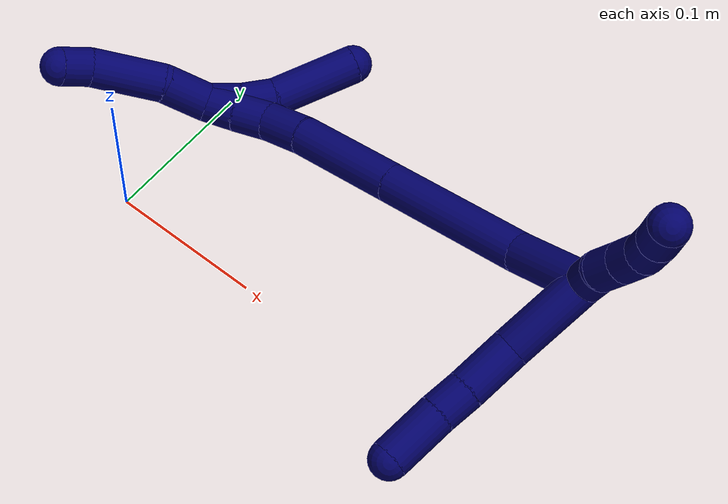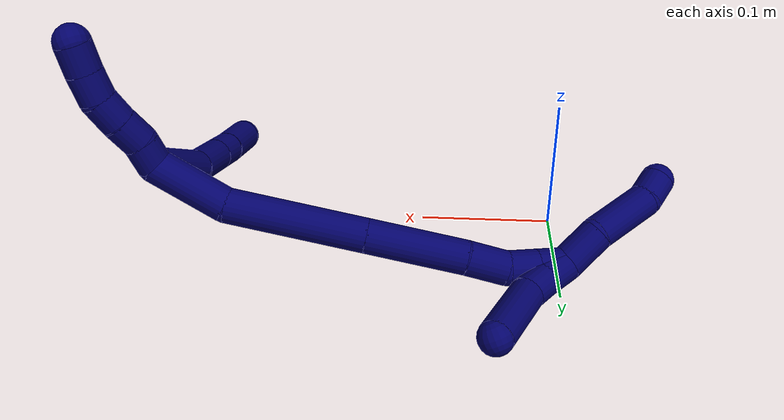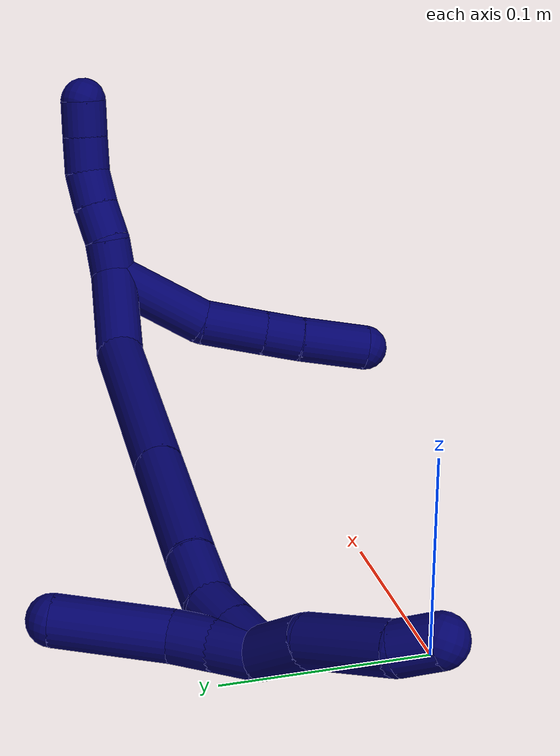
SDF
<sdf version="1.7">
 <world name="default">
  <model name="7">
   <static>0</static>
   <link name="7">
    <collision name="collision-cylinder-e_1_2_8">
     <pose>-0.003991 -0.027338 -0.002669 1.66811 -0.144305 -0.15902</pose>
     <geometry><cylinder><radius>0.0125</radius><length>0.055512</length></cylinder></geometry>
     <surface>
      <friction><ode><mu>1.16</mu><mu2>1.16</mu2><slip1>0</slip1><slip2>0</slip2></ode></friction>
      <contact><ode><kp>1e+06</kp><kd>1</kd><max_vel>0</max_vel><min_depth>0.001</min_depth></ode></contact>
     </surface>
    </collision>
    <visual name="visual-cylinder-e_1_2_8">
     <pose>-0.003991 -0.027338 -0.002669 1.66811 -0.144305 -0.15902</pose>
     <geometry><cylinder><radius>0.0125</radius><length>0.055512</length></cylinder></geometry>
     <material><ambient>0.003922 0 0.403922 1</ambient></material>
    </visual>
    <collision name="collision-cylinder-e_2_8_9">
     <pose>-0.011003 -0.071785 -0.001791 1.36641 -0.171138 -0.139416</pose>
     <geometry><cylinder><radius>0.0125</radius><length>0.035464</length></cylinder></geometry>
     <surface>
      <friction><ode><mu>1.16</mu><mu2>1.16</mu2><slip1>0</slip1><slip2>0</slip2></ode></friction>
      <contact><ode><kp>1e+06</kp><kd>1</kd><max_vel>0</max_vel><min_depth>0.001</min_depth></ode></contact>
     </surface>
    </collision>
    <visual name="visual-cylinder-e_2_8_9">
     <pose>-0.011003 -0.071785 -0.001791 1.36641 -0.171138 -0.139416</pose>
     <geometry><cylinder><radius>0.0125</radius><length>0.035464</length></cylinder></geometry>
     <material><ambient>0.003922 0 0.403922 1</ambient></material>
    </visual>
    <collision name="collision-cylinder-e_3_9_10">
     <pose>-0.016291 -0.099093 0.003897 1.36383 -0.2143 -0.174203</pose>
     <geometry><cylinder><radius>0.0125</radius><length>0.02133</length></cylinder></geometry>
     <surface>
      <friction><ode><mu>1.16</mu><mu2>1.16</mu2><slip1>0</slip1><slip2>0</slip2></ode></friction>
      <contact><ode><kp>1e+06</kp><kd>1</kd><max_vel>0</max_vel><min_depth>0.001</min_depth></ode></contact>
     </surface>
    </collision>
    <visual name="visual-cylinder-e_3_9_10">
     <pose>-0.016291 -0.099093 0.003897 1.36383 -0.2143 -0.174203</pose>
     <geometry><cylinder><radius>0.0125</radius><length>0.02133</length></cylinder></geometry>
     <material><ambient>0.003922 0 0.403922 1</ambient></material>
    </visual>
    <collision name="collision-cylinder-e_4_10_6">
     <pose>-0.021679 -0.127293 0.010664 1.3193 -0.166328 -0.129114</pose>
     <geometry><cylinder><radius>0.0125</radius><length>0.037694</length></cylinder></geometry>
     <surface>
      <friction><ode><mu>1.16</mu><mu2>1.16</mu2><slip1>0</slip1><slip2>0</slip2></ode></friction>
      <contact><ode><kp>1e+06</kp><kd>1</kd><max_vel>0</max_vel><min_depth>0.001</min_depth></ode></contact>
     </surface>
    </collision>
    <visual name="visual-cylinder-e_4_10_6">
     <pose>-0.021679 -0.127293 0.010664 1.3193 -0.166328 -0.129114</pose>
     <geometry><cylinder><radius>0.0125</radius><length>0.037694</length></cylinder></geometry>
     <material><ambient>0.003922 0 0.403922 1</ambient></material>
    </visual>
    <collision name="collision-cylinder-e_1_2_11">
     <pose>-0.000227 0.005356 0.008442 -0.565347 -0.022703 0.006594</pose>
     <geometry><cylinder><radius>0.0125</radius><length>0.02</length></cylinder></geometry>
     <surface>
      <friction><ode><mu>1.16</mu><mu2>1.16</mu2><slip1>0</slip1><slip2>0</slip2></ode></friction>
      <contact><ode><kp>1e+06</kp><kd>1</kd><max_vel>0</max_vel><min_depth>0.001</min_depth></ode></contact>
     </surface>
    </collision>
    <visual name="visual-cylinder-e_1_2_11">
     <pose>-0.000227 0.005356 0.008442 -0.565347 -0.022703 0.006594</pose>
     <geometry><cylinder><radius>0.0125</radius><length>0.02</length></cylinder></geometry>
     <material><ambient>0.003922 0 0.403922 1</ambient></material>
    </visual>
    <collision name="collision-cylinder-e_2_11_12">
     <pose>0.001701 0.016611 0.024665 -0.64867 0.217195 -0.073278</pose>
     <geometry><cylinder><radius>0.0125</radius><length>0.02</length></cylinder></geometry>
     <surface>
      <friction><ode><mu>1.16</mu><mu2>1.16</mu2><slip1>0</slip1><slip2>0</slip2></ode></friction>
      <contact><ode><kp>1e+06</kp><kd>1</kd><max_vel>0</max_vel><min_depth>0.001</min_depth></ode></contact>
     </surface>
    </collision>
    <visual name="visual-cylinder-e_2_11_12">
     <pose>0.001701 0.016611 0.024665 -0.64867 0.217195 -0.073278</pose>
     <geometry><cylinder><radius>0.0125</radius><length>0.02</length></cylinder></geometry>
     <material><ambient>0.003922 0 0.403922 1</ambient></material>
    </visual>
    <collision name="collision-cylinder-e_3_12_13">
     <pose>0.005396 0.027933 0.040706 -0.580997 0.154658 -0.04632</pose>
     <geometry><cylinder><radius>0.0125</radius><length>0.02</length></cylinder></geometry>
     <surface>
      <friction><ode><mu>1.16</mu><mu2>1.16</mu2><slip1>0</slip1><slip2>0</slip2></ode></friction>
      <contact><ode><kp>1e+06</kp><kd>1</kd><max_vel>0</max_vel><min_depth>0.001</min_depth></ode></contact>
     </surface>
    </collision>
    <visual name="visual-cylinder-e_3_12_13">
     <pose>0.005396 0.027933 0.040706 -0.580997 0.154658 -0.04632</pose>
     <geometry><cylinder><radius>0.0125</radius><length>0.02</length></cylinder></geometry>
     <material><ambient>0.003922 0 0.403922 1</ambient></material>
    </visual>
    <collision name="collision-cylinder-e_4_13_14">
     <pose>0.005926 0.037901 0.057816 -0.474432 -0.101282 0.024507</pose>
     <geometry><cylinder><radius>0.0125</radius><length>0.02</length></cylinder></geometry>
     <surface>
      <friction><ode><mu>1.16</mu><mu2>1.16</mu2><slip1>0</slip1><slip2>0</slip2></ode></friction>
      <contact><ode><kp>1e+06</kp><kd>1</kd><max_vel>0</max_vel><min_depth>0.001</min_depth></ode></contact>
     </surface>
    </collision>
    <visual name="visual-cylinder-e_4_13_14">
     <pose>0.005926 0.037901 0.057816 -0.474432 -0.101282 0.024507</pose>
     <geometry><cylinder><radius>0.0125</radius><length>0.02</length></cylinder></geometry>
     <material><ambient>0.003922 0 0.403922 1</ambient></material>
    </visual>
    <collision name="collision-cylinder-e_5_14_5">
     <pose>0.003127 0.04701 0.075382 -0.482398 -0.179699 0.044316</pose>
     <geometry><cylinder><radius>0.0125</radius><length>0.02</length></cylinder></geometry>
     <surface>
      <friction><ode><mu>1.16</mu><mu2>1.16</mu2><slip1>0</slip1><slip2>0</slip2></ode></friction>
      <contact><ode><kp>1e+06</kp><kd>1</kd><max_vel>0</max_vel><min_depth>0.001</min_depth></ode></contact>
     </surface>
    </collision>
    <visual name="visual-cylinder-e_5_14_5">
     <pose>0.003127 0.04701 0.075382 -0.482398 -0.179699 0.044316</pose>
     <geometry><cylinder><radius>0.0125</radius><length>0.02</length></cylinder></geometry>
     <material><ambient>0.003922 0 0.403922 1</ambient></material>
    </visual>
    <collision name="collision-cylinder-e_1_2_15">
     <pose>-0.016646 -0.004913 -0.021546 2.91742 -0.645562 -2.49237</pose>
     <geometry><cylinder><radius>0.0125</radius><length>0.055333</length></cylinder></geometry>
     <surface>
      <friction><ode><mu>1.16</mu><mu2>1.16</mu2><slip1>0</slip1><slip2>0</slip2></ode></friction>
      <contact><ode><kp>1e+06</kp><kd>1</kd><max_vel>0</max_vel><min_depth>0.001</min_depth></ode></contact>
     </surface>
    </collision>
    <visual name="visual-cylinder-e_1_2_15">
     <pose>-0.016646 -0.004913 -0.021546 2.91742 -0.645562 -2.49237</pose>
     <geometry><cylinder><radius>0.0125</radius><length>0.055333</length></cylinder></geometry>
     <material><ambient>0.003922 0 0.403922 1</ambient></material>
    </visual>
    <collision name="collision-cylinder-e_2_15_16">
     <pose>-0.073533 -0.018067 -0.070623 2.85073 -0.950655 -2.58711</pose>
     <geometry><cylinder><radius>0.0125</radius><length>0.0989</length></cylinder></geometry>
     <surface>
      <friction><ode><mu>1.16</mu><mu2>1.16</mu2><slip1>0</slip1><slip2>0</slip2></ode></friction>
      <contact><ode><kp>1e+06</kp><kd>1</kd><max_vel>0</max_vel><min_depth>0.001</min_depth></ode></contact>
     </surface>
    </collision>
    <visual name="visual-cylinder-e_2_15_16">
     <pose>-0.073533 -0.018067 -0.070623 2.85073 -0.950655 -2.58711</pose>
     <geometry><cylinder><radius>0.0125</radius><length>0.0989</length></cylinder></geometry>
     <material><ambient>0.003922 0 0.403922 1</ambient></material>
    </visual>
    <collision name="collision-cylinder-e_3_16_17">
     <pose>-0.142985 -0.03234 -0.11819 2.84916 -0.949177 -2.58325</pose>
     <geometry><cylinder><radius>0.0125</radius><length>0.071862</length></cylinder></geometry>
     <surface>
      <friction><ode><mu>1.16</mu><mu2>1.16</mu2><slip1>0</slip1><slip2>0</slip2></ode></friction>
      <contact><ode><kp>1e+06</kp><kd>1</kd><max_vel>0</max_vel><min_depth>0.001</min_depth></ode></contact>
     </surface>
    </collision>
    <visual name="visual-cylinder-e_3_16_17">
     <pose>-0.142985 -0.03234 -0.11819 2.84916 -0.949177 -2.58325</pose>
     <geometry><cylinder><radius>0.0125</radius><length>0.071862</length></cylinder></geometry>
     <material><ambient>0.003922 0 0.403922 1</ambient></material>
    </visual>
    <collision name="collision-cylinder-e_4_17_18">
     <pose>-0.183572 -0.042074 -0.14693 2.73954 -0.877246 -2.32198</pose>
     <geometry><cylinder><radius>0.0125</radius><length>0.029592</length></cylinder></geometry>
     <surface>
      <friction><ode><mu>1.16</mu><mu2>1.16</mu2><slip1>0</slip1><slip2>0</slip2></ode></friction>
      <contact><ode><kp>1e+06</kp><kd>1</kd><max_vel>0</max_vel><min_depth>0.001</min_depth></ode></contact>
     </surface>
    </collision>
    <visual name="visual-cylinder-e_4_17_18">
     <pose>-0.183572 -0.042074 -0.14693 2.73954 -0.877246 -2.32198</pose>
     <geometry><cylinder><radius>0.0125</radius><length>0.029592</length></cylinder></geometry>
     <material><ambient>0.003922 0 0.403922 1</ambient></material>
    </visual>
    <collision name="collision-cylinder-e_5_18_19">
     <pose>-0.204681 -0.050004 -0.159158 2.26542 -1.05596 -1.78818</pose>
     <geometry><cylinder><radius>0.0125</radius><length>0.022361</length></cylinder></geometry>
     <surface>
      <friction><ode><mu>1.16</mu><mu2>1.16</mu2><slip1>0</slip1><slip2>0</slip2></ode></friction>
      <contact><ode><kp>1e+06</kp><kd>1</kd><max_vel>0</max_vel><min_depth>0.001</min_depth></ode></contact>
     </surface>
    </collision>
    <visual name="visual-cylinder-e_5_18_19">
     <pose>-0.204681 -0.050004 -0.159158 2.26542 -1.05596 -1.78818</pose>
     <geometry><cylinder><radius>0.0125</radius><length>0.022361</length></cylinder></geometry>
     <material><ambient>0.003922 0 0.403922 1</ambient></material>
    </visual>
    <collision name="collision-cylinder-e_6_19_1">
     <pose>-0.224124 -0.05807 -0.166067 2.29379 -1.08601 -1.85752</pose>
     <geometry><cylinder><radius>0.0125</radius><length>0.021952</length></cylinder></geometry>
     <surface>
      <friction><ode><mu>1.16</mu><mu2>1.16</mu2><slip1>0</slip1><slip2>0</slip2></ode></friction>
      <contact><ode><kp>1e+06</kp><kd>1</kd><max_vel>0</max_vel><min_depth>0.001</min_depth></ode></contact>
     </surface>
    </collision>
    <visual name="visual-cylinder-e_6_19_1">
     <pose>-0.224124 -0.05807 -0.166067 2.29379 -1.08601 -1.85752</pose>
     <geometry><cylinder><radius>0.0125</radius><length>0.021952</length></cylinder></geometry>
     <material><ambient>0.003922 0 0.403922 1</ambient></material>
    </visual>
    <collision name="collision-cylinder-e_1_1_20">
     <pose>-0.225281 -0.05498 -0.170882 -1.77455 0.880016 -1.04818</pose>
     <geometry><cylinder><radius>0.0125</radius><length>0.022198</length></cylinder></geometry>
     <surface>
      <friction><ode><mu>1.16</mu><mu2>1.16</mu2><slip1>0</slip1><slip2>0</slip2></ode></friction>
      <contact><ode><kp>1e+06</kp><kd>1</kd><max_vel>0</max_vel><min_depth>0.001</min_depth></ode></contact>
     </surface>
    </collision>
    <visual name="visual-cylinder-e_1_1_20">
     <pose>-0.225281 -0.05498 -0.170882 -1.77455 0.880016 -1.04818</pose>
     <geometry><cylinder><radius>0.0125</radius><length>0.022198</length></cylinder></geometry>
     <material><ambient>0.003922 0 0.403922 1</ambient></material>
    </visual>
    <collision name="collision-cylinder-e_2_20_21">
     <pose>-0.209489 -0.040214 -0.173798 -1.75804 0.736665 -0.872054</pose>
     <geometry><cylinder><radius>0.0125</radius><length>0.021547</length></cylinder></geometry>
     <surface>
      <friction><ode><mu>1.16</mu><mu2>1.16</mu2><slip1>0</slip1><slip2>0</slip2></ode></friction>
      <contact><ode><kp>1e+06</kp><kd>1</kd><max_vel>0</max_vel><min_depth>0.001</min_depth></ode></contact>
     </surface>
    </collision>
    <visual name="visual-cylinder-e_2_20_21">
     <pose>-0.209489 -0.040214 -0.173798 -1.75804 0.736665 -0.872054</pose>
     <geometry><cylinder><radius>0.0125</radius><length>0.021547</length></cylinder></geometry>
     <material><ambient>0.003922 0 0.403922 1</ambient></material>
    </visual>
    <collision name="collision-cylinder-e_3_21_4">
     <pose>-0.189156 -0.008212 -0.181276 -1.81392 0.484257 -0.611619</pose>
     <geometry><cylinder><radius>0.0125</radius><length>0.056255</length></cylinder></geometry>
     <surface>
      <friction><ode><mu>1.16</mu><mu2>1.16</mu2><slip1>0</slip1><slip2>0</slip2></ode></friction>
      <contact><ode><kp>1e+06</kp><kd>1</kd><max_vel>0</max_vel><min_depth>0.001</min_depth></ode></contact>
     </surface>
    </collision>
    <visual name="visual-cylinder-e_3_21_4">
     <pose>-0.189156 -0.008212 -0.181276 -1.81392 0.484257 -0.611619</pose>
     <geometry><cylinder><radius>0.0125</radius><length>0.056255</length></cylinder></geometry>
     <material><ambient>0.003922 0 0.403922 1</ambient></material>
    </visual>
    <collision name="collision-cylinder-e_1_1_22">
     <pose>-0.248362 -0.065489 -0.163473 0.540123 -1.12344 -0.344974</pose>
     <geometry><cylinder><radius>0.0125</radius><length>0.032224</length></cylinder></geometry>
     <surface>
      <friction><ode><mu>1.16</mu><mu2>1.16</mu2><slip1>0</slip1><slip2>0</slip2></ode></friction>
      <contact><ode><kp>1e+06</kp><kd>1</kd><max_vel>0</max_vel><min_depth>0.001</min_depth></ode></contact>
     </surface>
    </collision>
    <visual name="visual-cylinder-e_1_1_22">
     <pose>-0.248362 -0.065489 -0.163473 0.540123 -1.12344 -0.344974</pose>
     <geometry><cylinder><radius>0.0125</radius><length>0.032224</length></cylinder></geometry>
     <material><ambient>0.003922 0 0.403922 1</ambient></material>
    </visual>
    <collision name="collision-cylinder-e_2_22_23">
     <pose>-0.28383 -0.079413 -0.153212 1.17803 -1.07998 -0.761852</pose>
     <geometry><cylinder><radius>0.0125</radius><length>0.047491</length></cylinder></geometry>
     <surface>
      <friction><ode><mu>1.16</mu><mu2>1.16</mu2><slip1>0</slip1><slip2>0</slip2></ode></friction>
      <contact><ode><kp>1e+06</kp><kd>1</kd><max_vel>0</max_vel><min_depth>0.001</min_depth></ode></contact>
     </surface>
    </collision>
    <visual name="visual-cylinder-e_2_22_23">
     <pose>-0.28383 -0.079413 -0.153212 1.17803 -1.07998 -0.761852</pose>
     <geometry><cylinder><radius>0.0125</radius><length>0.047491</length></cylinder></geometry>
     <material><ambient>0.003922 0 0.403922 1</ambient></material>
    </visual>
    <collision name="collision-cylinder-e_3_23_3">
     <pose>-0.311981 -0.095297 -0.144435 0.889708 -0.790448 -0.392632</pose>
     <geometry><cylinder><radius>0.0125</radius><length>0.020285</length></cylinder></geometry>
     <surface>
      <friction><ode><mu>1.16</mu><mu2>1.16</mu2><slip1>0</slip1><slip2>0</slip2></ode></friction>
      <contact><ode><kp>1e+06</kp><kd>1</kd><max_vel>0</max_vel><min_depth>0.001</min_depth></ode></contact>
     </surface>
    </collision>
    <visual name="visual-cylinder-e_3_23_3">
     <pose>-0.311981 -0.095297 -0.144435 0.889708 -0.790448 -0.392632</pose>
     <geometry><cylinder><radius>0.0125</radius><length>0.020285</length></cylinder></geometry>
     <material><ambient>0.003922 0 0.403922 1</ambient></material>
    </visual>
    <collision name="collision-sphere-3">
     <pose>-0.319189 -0.100841 -0.139942 0 -0 0</pose>
     <geometry><sphere><radius>0.0125</radius></sphere></geometry>
     <surface>
      <friction><ode><mu>1.16</mu><mu2>1.16</mu2><slip1>0</slip1><slip2>0</slip2></ode></friction>
      <contact><ode><kp>1e+06</kp><kd>1</kd><max_vel>0</max_vel><min_depth>0.001</min_depth></ode></contact>
     </surface>
    </collision>
    <visual name="visual-sphere-3">
     <pose>-0.319189 -0.100841 -0.139942 0 -0 0</pose>
     <geometry><sphere><radius>0.0125</radius></sphere></geometry>
     <material><ambient>0.003922 0 0.403922 1</ambient></material>
    </visual>
    <collision name="collision-sphere-23">
     <pose>-0.304772 -0.089753 -0.148928 0 -0 0</pose>
     <geometry><sphere><radius>0.0125</radius></sphere></geometry>
     <surface>
      <friction><ode><mu>1.16</mu><mu2>1.16</mu2><slip1>0</slip1><slip2>0</slip2></ode></friction>
      <contact><ode><kp>1e+06</kp><kd>1</kd><max_vel>0</max_vel><min_depth>0.001</min_depth></ode></contact>
     </surface>
    </collision>
    <visual name="visual-sphere-23">
     <pose>-0.304772 -0.089753 -0.148928 0 -0 0</pose>
     <geometry><sphere><radius>0.0125</radius></sphere></geometry>
     <material><ambient>0.003922 0 0.403922 1</ambient></material>
    </visual>
    <collision name="collision-sphere-22">
     <pose>-0.262888 -0.069073 -0.157496 0 -0 0</pose>
     <geometry><sphere><radius>0.0125</radius></sphere></geometry>
     <surface>
      <friction><ode><mu>1.16</mu><mu2>1.16</mu2><slip1>0</slip1><slip2>0</slip2></ode></friction>
      <contact><ode><kp>1e+06</kp><kd>1</kd><max_vel>0</max_vel><min_depth>0.001</min_depth></ode></contact>
     </surface>
    </collision>
    <visual name="visual-sphere-22">
     <pose>-0.262888 -0.069073 -0.157496 0 -0 0</pose>
     <geometry><sphere><radius>0.0125</radius></sphere></geometry>
     <material><ambient>0.003922 0 0.403922 1</ambient></material>
    </visual>
    <collision name="collision-sphere-4">
     <pose>-0.176061 0.01595 -0.187269 0 -0 0</pose>
     <geometry><sphere><radius>0.0125</radius></sphere></geometry>
     <surface>
      <friction><ode><mu>1.16</mu><mu2>1.16</mu2><slip1>0</slip1><slip2>0</slip2></ode></friction>
      <contact><ode><kp>1e+06</kp><kd>1</kd><max_vel>0</max_vel><min_depth>0.001</min_depth></ode></contact>
     </surface>
    </collision>
    <visual name="visual-sphere-4">
     <pose>-0.176061 0.01595 -0.187269 0 -0 0</pose>
     <geometry><sphere><radius>0.0125</radius></sphere></geometry>
     <material><ambient>0.003922 0 0.403922 1</ambient></material>
    </visual>
    <collision name="collision-sphere-21">
     <pose>-0.202251 -0.032373 -0.175284 0 -0 0</pose>
     <geometry><sphere><radius>0.0125</radius></sphere></geometry>
     <surface>
      <friction><ode><mu>1.16</mu><mu2>1.16</mu2><slip1>0</slip1><slip2>0</slip2></ode></friction>
      <contact><ode><kp>1e+06</kp><kd>1</kd><max_vel>0</max_vel><min_depth>0.001</min_depth></ode></contact>
     </surface>
    </collision>
    <visual name="visual-sphere-21">
     <pose>-0.202251 -0.032373 -0.175284 0 -0 0</pose>
     <geometry><sphere><radius>0.0125</radius></sphere></geometry>
     <material><ambient>0.003922 0 0.403922 1</ambient></material>
    </visual>
    <collision name="collision-sphere-20">
     <pose>-0.216726 -0.048055 -0.172313 0 -0 0</pose>
     <geometry><sphere><radius>0.0125</radius></sphere></geometry>
     <surface>
      <friction><ode><mu>1.16</mu><mu2>1.16</mu2><slip1>0</slip1><slip2>0</slip2></ode></friction>
      <contact><ode><kp>1e+06</kp><kd>1</kd><max_vel>0</max_vel><min_depth>0.001</min_depth></ode></contact>
     </surface>
    </collision>
    <visual name="visual-sphere-20">
     <pose>-0.216726 -0.048055 -0.172313 0 -0 0</pose>
     <geometry><sphere><radius>0.0125</radius></sphere></geometry>
     <material><ambient>0.003922 0 0.403922 1</ambient></material>
    </visual>
    <collision name="collision-sphere-11">
     <pose>-0.000454 0.010711 0.016884 0 -0 0</pose>
     <geometry><sphere><radius>0.0125</radius></sphere></geometry>
     <surface>
      <friction><ode><mu>1.16</mu><mu2>1.16</mu2><slip1>0</slip1><slip2>0</slip2></ode></friction>
      <contact><ode><kp>1e+06</kp><kd>1</kd><max_vel>0</max_vel><min_depth>0.001</min_depth></ode></contact>
     </surface>
    </collision>
    <visual name="visual-sphere-11">
     <pose>-0.000454 0.010711 0.016884 0 -0 0</pose>
     <geometry><sphere><radius>0.0125</radius></sphere></geometry>
     <material><ambient>0.003922 0 0.403922 1</ambient></material>
    </visual>
    <collision name="collision-sphere-6">
     <pose>-0.024799 -0.145295 0.015289 0 -0 0</pose>
     <geometry><sphere><radius>0.0125</radius></sphere></geometry>
     <surface>
      <friction><ode><mu>1.16</mu><mu2>1.16</mu2><slip1>0</slip1><slip2>0</slip2></ode></friction>
      <contact><ode><kp>1e+06</kp><kd>1</kd><max_vel>0</max_vel><min_depth>0.001</min_depth></ode></contact>
     </surface>
    </collision>
    <visual name="visual-sphere-6">
     <pose>-0.024799 -0.145295 0.015289 0 -0 0</pose>
     <geometry><sphere><radius>0.0125</radius></sphere></geometry>
     <material><ambient>0.003922 0 0.403922 1</ambient></material>
    </visual>
    <collision name="collision-sphere-10">
     <pose>-0.018559 -0.109291 0.006038 0 -0 0</pose>
     <geometry><sphere><radius>0.0125</radius></sphere></geometry>
     <surface>
      <friction><ode><mu>1.16</mu><mu2>1.16</mu2><slip1>0</slip1><slip2>0</slip2></ode></friction>
      <contact><ode><kp>1e+06</kp><kd>1</kd><max_vel>0</max_vel><min_depth>0.001</min_depth></ode></contact>
     </surface>
    </collision>
    <visual name="visual-sphere-10">
     <pose>-0.018559 -0.109291 0.006038 0 -0 0</pose>
     <geometry><sphere><radius>0.0125</radius></sphere></geometry>
     <material><ambient>0.003922 0 0.403922 1</ambient></material>
    </visual>
    <collision name="collision-sphere-9">
     <pose>-0.014023 -0.088894 0.001755 0 -0 0</pose>
     <geometry><sphere><radius>0.0125</radius></sphere></geometry>
     <surface>
      <friction><ode><mu>1.16</mu><mu2>1.16</mu2><slip1>0</slip1><slip2>0</slip2></ode></friction>
      <contact><ode><kp>1e+06</kp><kd>1</kd><max_vel>0</max_vel><min_depth>0.001</min_depth></ode></contact>
     </surface>
    </collision>
    <visual name="visual-sphere-9">
     <pose>-0.014023 -0.088894 0.001755 0 -0 0</pose>
     <geometry><sphere><radius>0.0125</radius></sphere></geometry>
     <material><ambient>0.003922 0 0.403922 1</ambient></material>
    </visual>
    <collision name="collision-sphere-2">
     <geometry><sphere><radius>0.0125</radius></sphere></geometry>
     <surface>
      <friction><ode><mu>1.16</mu><mu2>1.16</mu2><slip1>0</slip1><slip2>0</slip2></ode></friction>
      <contact><ode><kp>1e+06</kp><kd>1</kd><max_vel>0</max_vel><min_depth>0.001</min_depth></ode></contact>
     </surface>
    </collision>
    <visual name="visual-sphere-2">
     <geometry><sphere><radius>0.0125</radius></sphere></geometry>
     <material><ambient>0.003922 0 0.403922 1</ambient></material>
    </visual>
    <collision name="collision-sphere-19">
     <pose>-0.214412 -0.054234 -0.162682 0 -0 0</pose>
     <geometry><sphere><radius>0.0125</radius></sphere></geometry>
     <surface>
      <friction><ode><mu>1.16</mu><mu2>1.16</mu2><slip1>0</slip1><slip2>0</slip2></ode></friction>
      <contact><ode><kp>1e+06</kp><kd>1</kd><max_vel>0</max_vel><min_depth>0.001</min_depth></ode></contact>
     </surface>
    </collision>
    <visual name="visual-sphere-19">
     <pose>-0.214412 -0.054234 -0.162682 0 -0 0</pose>
     <geometry><sphere><radius>0.0125</radius></sphere></geometry>
     <material><ambient>0.003922 0 0.403922 1</ambient></material>
    </visual>
    <collision name="collision-sphere-8">
     <pose>-0.007983 -0.054675 -0.005338 0 -0 0</pose>
     <geometry><sphere><radius>0.0125</radius></sphere></geometry>
     <surface>
      <friction><ode><mu>1.16</mu><mu2>1.16</mu2><slip1>0</slip1><slip2>0</slip2></ode></friction>
      <contact><ode><kp>1e+06</kp><kd>1</kd><max_vel>0</max_vel><min_depth>0.001</min_depth></ode></contact>
     </surface>
    </collision>
    <visual name="visual-sphere-8">
     <pose>-0.007983 -0.054675 -0.005338 0 -0 0</pose>
     <geometry><sphere><radius>0.0125</radius></sphere></geometry>
     <material><ambient>0.003922 0 0.403922 1</ambient></material>
    </visual>
    <collision name="collision-sphere-12">
     <pose>0.003856 0.02251 0.032447 0 -0 0</pose>
     <geometry><sphere><radius>0.0125</radius></sphere></geometry>
     <surface>
      <friction><ode><mu>1.16</mu><mu2>1.16</mu2><slip1>0</slip1><slip2>0</slip2></ode></friction>
      <contact><ode><kp>1e+06</kp><kd>1</kd><max_vel>0</max_vel><min_depth>0.001</min_depth></ode></contact>
     </surface>
    </collision>
    <visual name="visual-sphere-12">
     <pose>0.003856 0.02251 0.032447 0 -0 0</pose>
     <geometry><sphere><radius>0.0125</radius></sphere></geometry>
     <material><ambient>0.003922 0 0.403922 1</ambient></material>
    </visual>
    <collision name="collision-sphere-13">
     <pose>0.006937 0.033356 0.048966 0 -0 0</pose>
     <geometry><sphere><radius>0.0125</radius></sphere></geometry>
     <surface>
      <friction><ode><mu>1.16</mu><mu2>1.16</mu2><slip1>0</slip1><slip2>0</slip2></ode></friction>
      <contact><ode><kp>1e+06</kp><kd>1</kd><max_vel>0</max_vel><min_depth>0.001</min_depth></ode></contact>
     </surface>
    </collision>
    <visual name="visual-sphere-13">
     <pose>0.006937 0.033356 0.048966 0 -0 0</pose>
     <geometry><sphere><radius>0.0125</radius></sphere></geometry>
     <material><ambient>0.003922 0 0.403922 1</ambient></material>
    </visual>
    <collision name="collision-sphere-14">
     <pose>0.004914 0.042446 0.066666 0 -0 0</pose>
     <geometry><sphere><radius>0.0125</radius></sphere></geometry>
     <surface>
      <friction><ode><mu>1.16</mu><mu2>1.16</mu2><slip1>0</slip1><slip2>0</slip2></ode></friction>
      <contact><ode><kp>1e+06</kp><kd>1</kd><max_vel>0</max_vel><min_depth>0.001</min_depth></ode></contact>
     </surface>
    </collision>
    <visual name="visual-sphere-14">
     <pose>0.004914 0.042446 0.066666 0 -0 0</pose>
     <geometry><sphere><radius>0.0125</radius></sphere></geometry>
     <material><ambient>0.003922 0 0.403922 1</ambient></material>
    </visual>
    <collision name="collision-sphere-5">
     <pose>0.00134 0.051575 0.084098 0 -0 0</pose>
     <geometry><sphere><radius>0.0125</radius></sphere></geometry>
     <surface>
      <friction><ode><mu>1.16</mu><mu2>1.16</mu2><slip1>0</slip1><slip2>0</slip2></ode></friction>
      <contact><ode><kp>1e+06</kp><kd>1</kd><max_vel>0</max_vel><min_depth>0.001</min_depth></ode></contact>
     </surface>
    </collision>
    <visual name="visual-sphere-5">
     <pose>0.00134 0.051575 0.084098 0 -0 0</pose>
     <geometry><sphere><radius>0.0125</radius></sphere></geometry>
     <material><ambient>0.003922 0 0.403922 1</ambient></material>
    </visual>
    <collision name="collision-sphere-15">
     <pose>-0.033291 -0.009825 -0.043092 0 -0 0</pose>
     <geometry><sphere><radius>0.0125</radius></sphere></geometry>
     <surface>
      <friction><ode><mu>1.16</mu><mu2>1.16</mu2><slip1>0</slip1><slip2>0</slip2></ode></friction>
      <contact><ode><kp>1e+06</kp><kd>1</kd><max_vel>0</max_vel><min_depth>0.001</min_depth></ode></contact>
     </surface>
    </collision>
    <visual name="visual-sphere-15">
     <pose>-0.033291 -0.009825 -0.043092 0 -0 0</pose>
     <geometry><sphere><radius>0.0125</radius></sphere></geometry>
     <material><ambient>0.003922 0 0.403922 1</ambient></material>
    </visual>
    <collision name="collision-sphere-16">
     <pose>-0.113775 -0.026308 -0.098154 0 -0 0</pose>
     <geometry><sphere><radius>0.0125</radius></sphere></geometry>
     <surface>
      <friction><ode><mu>1.16</mu><mu2>1.16</mu2><slip1>0</slip1><slip2>0</slip2></ode></friction>
      <contact><ode><kp>1e+06</kp><kd>1</kd><max_vel>0</max_vel><min_depth>0.001</min_depth></ode></contact>
     </surface>
    </collision>
    <visual name="visual-sphere-16">
     <pose>-0.113775 -0.026308 -0.098154 0 -0 0</pose>
     <geometry><sphere><radius>0.0125</radius></sphere></geometry>
     <material><ambient>0.003922 0 0.403922 1</ambient></material>
    </visual>
    <collision name="collision-sphere-17">
     <pose>-0.172194 -0.038372 -0.138226 0 -0 0</pose>
     <geometry><sphere><radius>0.0125</radius></sphere></geometry>
     <surface>
      <friction><ode><mu>1.16</mu><mu2>1.16</mu2><slip1>0</slip1><slip2>0</slip2></ode></friction>
      <contact><ode><kp>1e+06</kp><kd>1</kd><max_vel>0</max_vel><min_depth>0.001</min_depth></ode></contact>
     </surface>
    </collision>
    <visual name="visual-sphere-17">
     <pose>-0.172194 -0.038372 -0.138226 0 -0 0</pose>
     <geometry><sphere><radius>0.0125</radius></sphere></geometry>
     <material><ambient>0.003922 0 0.403922 1</ambient></material>
    </visual>
    <collision name="collision-sphere-18">
     <pose>-0.19495 -0.045775 -0.155634 0 -0 0</pose>
     <geometry><sphere><radius>0.0125</radius></sphere></geometry>
     <surface>
      <friction><ode><mu>1.16</mu><mu2>1.16</mu2><slip1>0</slip1><slip2>0</slip2></ode></friction>
      <contact><ode><kp>1e+06</kp><kd>1</kd><max_vel>0</max_vel><min_depth>0.001</min_depth></ode></contact>
     </surface>
    </collision>
    <visual name="visual-sphere-18">
     <pose>-0.19495 -0.045775 -0.155634 0 -0 0</pose>
     <geometry><sphere><radius>0.0125</radius></sphere></geometry>
     <material><ambient>0.003922 0 0.403922 1</ambient></material>
    </visual>
    <collision name="collision-sphere-1">
     <pose>-0.233835 -0.061905 -0.169451 0 -0 0</pose>
     <geometry><sphere><radius>0.0125</radius></sphere></geometry>
     <surface>
      <friction><ode><mu>1.16</mu><mu2>1.16</mu2><slip1>0</slip1><slip2>0</slip2></ode></friction>
      <contact><ode><kp>1e+06</kp><kd>1</kd><max_vel>0</max_vel><min_depth>0.001</min_depth></ode></contact>
     </surface>
    </collision>
    <visual name="visual-sphere-1">
     <pose>-0.233835 -0.061905 -0.169451 0 -0 0</pose>
     <geometry><sphere><radius>0.0125</radius></sphere></geometry>
     <material><ambient>0.003922 0 0.403922 1</ambient></material>
    </visual>
    <inertial>
     <pose>-0.11043 -0.035551 -0.076025 0 -0 0</pose>
     <mass>0.75</mass>
     <inertia>
      <ixx>-0.000104</ixx>
      <ixy>0</ixy>
      <ixz>0</ixz>
      <iyy>7.9e-05</iyy>
      <iyz>0</iyz>
      <izz>0.000154</izz>
     </inertia>
    </inertial>
   </link>
   <pose>0.282558 0.085544 0.088818 0.532025 0.398883 0.126011</pose>
  </model>
 </world>
</sdf>
